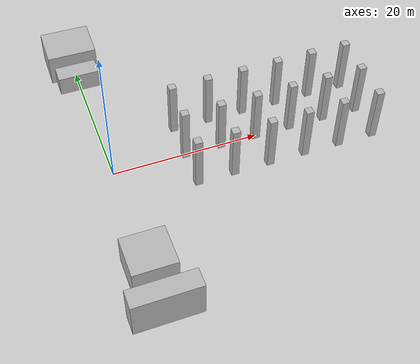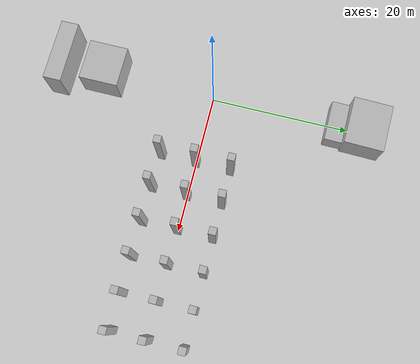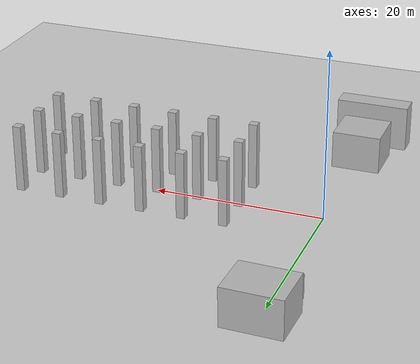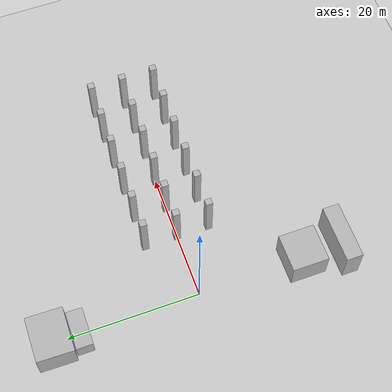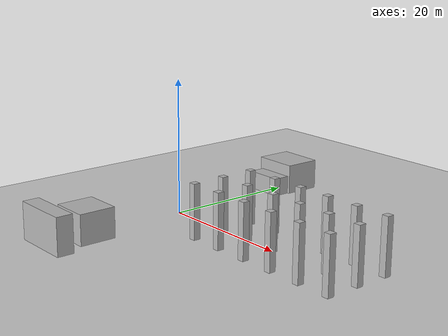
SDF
<sdf version="1.6">
 <world name="default">
  <light name="sun" type="directional">
   <pose>0 0 10 0 -0 0</pose>
   <diffuse>0.8 0.8 0.8 1</diffuse>
   <specular>0.2 0.2 0.2 1</specular>
   <attenuation>
    <range>1000</range>
    <constant>0.9</constant>
    <linear>0.01</linear>
    <quadratic>0.001</quadratic>
   </attenuation>
   <direction>-0.5 0.1 -0.9</direction>
  </light>
  <model name="ground_plane">
   <static>1</static>
   <link name="link">
    <collision name="collision">
     <geometry><plane><normal>0 0 1</normal><size>100 100</size></plane></geometry>
     <surface>
      <contact><collide_bitmask>65535</collide_bitmask></contact>
      <friction><ode><mu>100</mu><mu2>50</mu2></ode></friction>
     </surface>
    </collision>
    <visual name="visual">
     <cast_shadows>0</cast_shadows>
     <geometry><plane><normal>0 0 1</normal><size>100 100</size></plane></geometry>
     <material>
      <script><uri>file://media/materials/scripts/gazebo.material</uri><name>Gazebo/Grey</name></script>
     </material>
    </visual>
   </link>
  </model>
  <physics name="default_physics" default="0" type="ode">
   <ode>
    <solver>
     <type>quick</type>
     <iters>10</iters>
     <sor>1.3</sor>
     <use_dynamic_moi_rescaling>0</use_dynamic_moi_rescaling>
    </solver>
    <constraints>
     <cfm>0</cfm>
     <erp>0.2</erp>
     <contact_max_correcting_vel>100</contact_max_correcting_vel>
     <contact_surface_layer>0.001</contact_surface_layer>
    </constraints>
   </ode>
   <max_step_size>0.004</max_step_size>
   <real_time_factor>1</real_time_factor>
   <real_time_update_rate>250</real_time_update_rate>
  </physics>
  <model name="box0">
   <pose>9.99689 4.99588 4.00017 0.000324 -2.3e-05 -0.003849</pose>
   <link name="link">
    <collision name="collision"><geometry><box><size>1 1 8</size></box></geometry></collision>
    <visual name="visual"><geometry><box><size>1 1 8</size></box></geometry></visual>
    <inertial>
     <inertia><ixx>1</ixx><ixy>0</ixy><ixz>0</ixz><iyy>1</iyy><iyz>0</iyz><izz>1</izz></inertia>
     <mass>1</mass>
    </inertial>
   </link>
  </model>
  <model name="box1">
   <pose>14.9969 4.99588 4.00017 0.000324 -2.3e-05 -0.003849</pose>
   <link name="link">
    <collision name="collision"><geometry><box><size>1 1 8</size></box></geometry></collision>
    <visual name="visual"><geometry><box><size>1 1 8</size></box></geometry></visual>
    <inertial>
     <inertia><ixx>1</ixx><ixy>0</ixy><ixz>0</ixz><iyy>1</iyy><iyz>0</iyz><izz>1</izz></inertia>
     <mass>1</mass>
    </inertial>
   </link>
  </model>
  <model name="box2">
   <pose>19.9969 4.99588 4.00017 0.000324 -2.3e-05 -0.003849</pose>
   <link name="link">
    <collision name="collision"><geometry><box><size>1 1 8</size></box></geometry></collision>
    <visual name="visual"><geometry><box><size>1 1 8</size></box></geometry></visual>
    <inertial>
     <inertia><ixx>1</ixx><ixy>0</ixy><ixz>0</ixz><iyy>1</iyy><iyz>0</iyz><izz>1</izz></inertia>
     <mass>1</mass>
    </inertial>
   </link>
  </model>
  <model name="box3">
   <pose>24.9969 4.99588 4.00017 0.000324 -2.3e-05 -0.003849</pose>
   <link name="link">
    <collision name="collision"><geometry><box><size>1 1 8</size></box></geometry></collision>
    <visual name="visual"><geometry><box><size>1 1 8</size></box></geometry></visual>
    <inertial>
     <inertia><ixx>1</ixx><ixy>0</ixy><ixz>0</ixz><iyy>1</iyy><iyz>0</iyz><izz>1</izz></inertia>
     <mass>1</mass>
    </inertial>
   </link>
  </model>
  <model name="box4">
   <pose>29.9974 4.99492 4.00028 0.000565 -2e-06 -0.002046</pose>
   <link name="link">
    <collision name="collision"><geometry><box><size>1 1 8</size></box></geometry></collision>
    <visual name="visual"><geometry><box><size>1 1 8</size></box></geometry></visual>
    <inertial>
     <inertia><ixx>1</ixx><ixy>0</ixy><ixz>0</ixz><iyy>1</iyy><iyz>0</iyz><izz>1</izz></inertia>
     <mass>1</mass>
    </inertial>
   </link>
  </model>
  <model name="box5">
   <pose>34.9968 4.99541 4.00024 0.000436 -4.6e-05 -0.0037</pose>
   <link name="link">
    <collision name="collision"><geometry><box><size>1 1 8</size></box></geometry></collision>
    <visual name="visual"><geometry><box><size>1 1 8</size></box></geometry></visual>
    <inertial>
     <inertia><ixx>1</ixx><ixy>0</ixy><ixz>0</ixz><iyy>1</iyy><iyz>0</iyz><izz>1</izz></inertia>
     <mass>1</mass>
    </inertial>
   </link>
  </model>
  <model name="box10">
   <pose>9.9968 -0.004602 4.00024 0.000436 -4.6e-05 -0.0037</pose>
   <link name="link">
    <collision name="collision"><geometry><box><size>1 1 8</size></box></geometry></collision>
    <visual name="visual"><geometry><box><size>1 1 8</size></box></geometry></visual>
    <inertial>
     <inertia><ixx>1</ixx><ixy>0</ixy><ixz>0</ixz><iyy>1</iyy><iyz>0</iyz><izz>1</izz></inertia>
     <mass>1</mass>
    </inertial>
   </link>
  </model>
  <model name="box11">
   <pose>14.9968 -0.004602 4.00024 0.000436 -4.6e-05 -0.0037</pose>
   <link name="link">
    <collision name="collision"><geometry><box><size>1 1 8</size></box></geometry></collision>
    <visual name="visual"><geometry><box><size>1 1 8</size></box></geometry></visual>
    <inertial>
     <inertia><ixx>1</ixx><ixy>0</ixy><ixz>0</ixz><iyy>1</iyy><iyz>0</iyz><izz>1</izz></inertia>
     <mass>1</mass>
    </inertial>
   </link>
  </model>
  <model name="box12">
   <pose>19.9968 -0.004602 4.00024 0.000436 -4.6e-05 -0.0037</pose>
   <link name="link">
    <collision name="collision"><geometry><box><size>1 1 8</size></box></geometry></collision>
    <visual name="visual"><geometry><box><size>1 1 8</size></box></geometry></visual>
    <inertial>
     <inertia><ixx>1</ixx><ixy>0</ixy><ixz>0</ixz><iyy>1</iyy><iyz>0</iyz><izz>1</izz></inertia>
     <mass>1</mass>
    </inertial>
   </link>
  </model>
  <model name="box13">
   <pose>24.9969 -0.004137 4.00017 0.000324 -2.3e-05 -0.003849</pose>
   <link name="link">
    <collision name="collision"><geometry><box><size>1 1 8</size></box></geometry></collision>
    <visual name="visual"><geometry><box><size>1 1 8</size></box></geometry></visual>
    <inertial>
     <inertia><ixx>1</ixx><ixy>0</ixy><ixz>0</ixz><iyy>1</iyy><iyz>0</iyz><izz>1</izz></inertia>
     <mass>1</mass>
    </inertial>
   </link>
  </model>
  <model name="box14">
   <pose>29.9969 -0.004137 4.00017 0.000324 -2.3e-05 -0.003849</pose>
   <link name="link">
    <collision name="collision"><geometry><box><size>1 1 8</size></box></geometry></collision>
    <visual name="visual"><geometry><box><size>1 1 8</size></box></geometry></visual>
    <inertial>
     <inertia><ixx>1</ixx><ixy>0</ixy><ixz>0</ixz><iyy>1</iyy><iyz>0</iyz><izz>1</izz></inertia>
     <mass>1</mass>
    </inertial>
   </link>
  </model>
  <model name="box15">
   <pose>34.9969 -0.004137 4.00017 0.000324 -2.3e-05 -0.003849</pose>
   <link name="link">
    <collision name="collision"><geometry><box><size>1 1 8</size></box></geometry></collision>
    <visual name="visual"><geometry><box><size>1 1 8</size></box></geometry></visual>
    <inertial>
     <inertia><ixx>1</ixx><ixy>0</ixy><ixz>0</ixz><iyy>1</iyy><iyz>0</iyz><izz>1</izz></inertia>
     <mass>1</mass>
    </inertial>
   </link>
  </model>
  <model name="box20">
   <pose>9.99689 -5.0041 4.00017 0.000324 -2.3e-05 -0.003849</pose>
   <link name="link">
    <collision name="collision"><geometry><box><size>1 1 8</size></box></geometry></collision>
    <visual name="visual"><geometry><box><size>1 1 8</size></box></geometry></visual>
    <inertial>
     <inertia><ixx>1</ixx><ixy>0</ixy><ixz>0</ixz><iyy>1</iyy><iyz>0</iyz><izz>1</izz></inertia>
     <mass>1</mass>
    </inertial>
   </link>
  </model>
  <model name="box21">
   <pose>14.9969 -5.0041 4.00017 0.000324 -2.3e-05 -0.003849</pose>
   <link name="link">
    <collision name="collision"><geometry><box><size>1 1 8</size></box></geometry></collision>
    <visual name="visual"><geometry><box><size>1 1 8</size></box></geometry></visual>
    <inertial>
     <inertia><ixx>1</ixx><ixy>0</ixy><ixz>0</ixz><iyy>1</iyy><iyz>0</iyz><izz>1</izz></inertia>
     <mass>1</mass>
    </inertial>
   </link>
  </model>
  <model name="box22">
   <pose>19.9969 -5.0041 4.00017 0.000324 -2.3e-05 -0.003849</pose>
   <link name="link">
    <collision name="collision"><geometry><box><size>1 1 8</size></box></geometry></collision>
    <visual name="visual"><geometry><box><size>1 1 8</size></box></geometry></visual>
    <inertial>
     <inertia><ixx>1</ixx><ixy>0</ixy><ixz>0</ixz><iyy>1</iyy><iyz>0</iyz><izz>1</izz></inertia>
     <mass>1</mass>
    </inertial>
   </link>
  </model>
  <model name="box23">
   <pose>24.9969 -5.0041 4.00017 0.000324 -2.3e-05 -0.003849</pose>
   <link name="link">
    <collision name="collision"><geometry><box><size>1 1 8</size></box></geometry></collision>
    <visual name="visual"><geometry><box><size>1 1 8</size></box></geometry></visual>
    <inertial>
     <inertia><ixx>1</ixx><ixy>0</ixy><ixz>0</ixz><iyy>1</iyy><iyz>0</iyz><izz>1</izz></inertia>
     <mass>1</mass>
    </inertial>
   </link>
  </model>
  <model name="box24">
   <pose>29.9969 -5.0041 4.00017 0.000324 -2.3e-05 -0.003849</pose>
   <link name="link">
    <collision name="collision"><geometry><box><size>1 1 8</size></box></geometry></collision>
    <visual name="visual"><geometry><box><size>1 1 8</size></box></geometry></visual>
    <inertial>
     <inertia><ixx>1</ixx><ixy>0</ixy><ixz>0</ixz><iyy>1</iyy><iyz>0</iyz><izz>1</izz></inertia>
     <mass>1</mass>
    </inertial>
   </link>
  </model>
  <model name="box25">
   <pose>34.9969 -5.0041 4.00017 0.000324 -2.3e-05 -0.003849</pose>
   <link name="link">
    <collision name="collision"><geometry><box><size>1 1 8</size></box></geometry></collision>
    <visual name="visual"><geometry><box><size>1 1 8</size></box></geometry></visual>
    <inertial>
     <inertia><ixx>1</ixx><ixy>0</ixy><ixz>0</ixz><iyy>1</iyy><iyz>0</iyz><izz>1</izz></inertia>
     <mass>1</mass>
    </inertial>
   </link>
  </model>
  <model name="box26">
   <pose>0.039206 -22.0161 2.74993 5.9e-05 3e-05 0.00112</pose>
   <link name="link">
    <collision name="collision"><geometry><box><size>8.75 2.5 5.5</size></box></geometry></collision>
    <visual name="visual"><geometry><box><size>8.75 2.5 5.5</size></box></geometry></visual>
    <inertial>
     <inertia><ixx>1</ixx><ixy>0</ixy><ixz>0</ixz><iyy>1</iyy><iyz>0</iyz><izz>1</izz></inertia>
     <mass>1</mass>
    </inertial>
   </link>
  </model>
  <model name="box65">
   <pose>0.007357 -16.0006 2.25001 1e-06 -1.3e-05 0.000186</pose>
   <link name="link">
    <collision name="collision"><geometry><box><size>5.75 5.5 4.5</size></box></geometry></collision>
    <visual name="visual"><geometry><box><size>5.75 5.5 4.5</size></box></geometry></visual>
    <inertial>
     <inertia><ixx>1</ixx><ixy>0</ixy><ixz>0</ixz><iyy>1</iyy><iyz>0</iyz><izz>1</izz></inertia>
     <mass>1</mass>
    </inertial>
   </link>
  </model>
  <model name="box66">
   <pose>-0.016464 17.9947 1.375 -1.3e-05 1e-06 -0.006857</pose>
   <link name="link">
    <collision name="collision"><geometry><box><size>5.75 2.5 2.75</size></box></geometry></collision>
    <visual name="visual"><geometry><box><size>5.75 2.5 2.75</size></box></geometry></visual>
    <inertial>
     <inertia><ixx>1</ixx><ixy>0</ixy><ixz>0</ixz><iyy>1</iyy><iyz>0</iyz><izz>1</izz></inertia>
     <mass>1</mass>
    </inertial>
   </link>
  </model>
  <model name="box67">
   <pose>-0.131654 22.1016 2.25 -8e-06 1.6e-05 -0.021372</pose>
   <link name="link">
    <collision name="collision"><geometry><box><size>6.75 5.5 4.5</size></box></geometry></collision>
    <visual name="visual"><geometry><box><size>6.75 5.5 4.5</size></box></geometry></visual>
    <inertial>
     <inertia><ixx>1</ixx><ixy>0</ixy><ixz>0</ixz><iyy>1</iyy><iyz>0</iyz><izz>1</izz></inertia>
     <mass>1</mass>
    </inertial>
   </link>
  </model>
  <gravity>0 0 -9.8066</gravity>
  <magnetic_field>6e-06 2.3e-05 -4.2e-05</magnetic_field>
  <atmosphere type="adiabatic"/>
  <scene><ambient>0.4 0.4 0.4 1</ambient><background>0.7 0.7 0.7 1</background><shadows>1</shadows></scene>
  <audio><device>default</device></audio>
  <spherical_coordinates>
   <surface_model>EARTH_WGS84</surface_model>
   <latitude_deg>0</latitude_deg>
   <longitude_deg>0</longitude_deg>
   <elevation>0</elevation>
   <heading_deg>0</heading_deg>
  </spherical_coordinates>
 </world>
</sdf>
